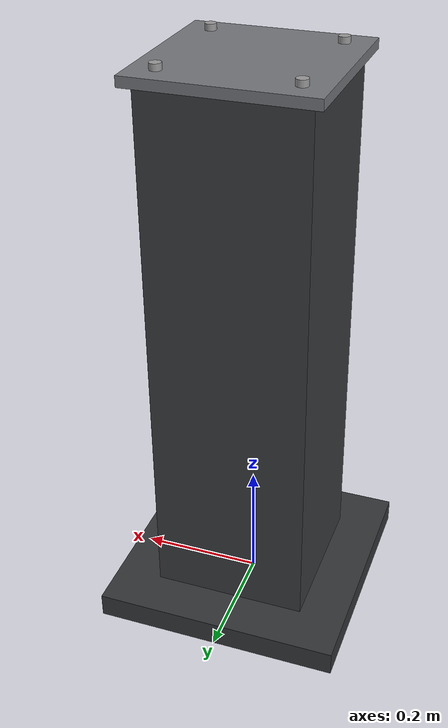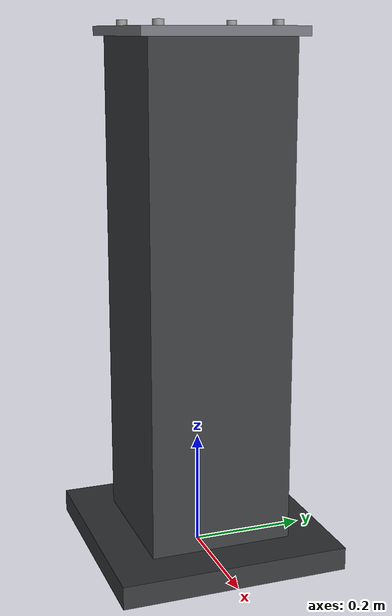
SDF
<?xml version="1.0" ?>
<!--
  ROBOT MOUNTING PEDESTAL
  ────────────────────────
  Heavy steel pedestal to mount UR5e at table height
  Dimensions: 0.25m × 0.25m × 0.90m (brings robot to good working height)
-->
<sdf version="1.6">
  <model name="robot_pedestal">
    <static>true</static>

    <!-- Main column -->
    <link name="column">
      <pose>0 0 0.45 0 0 0</pose>
      <visual name="column_visual">
        <geometry>
          <box><size>0.25 0.25 0.90</size></box>
        </geometry>
        <material>
          <!-- Dark industrial grey, matte finish -->
          <ambient>0.18 0.19 0.20 1.0</ambient>
          <diffuse>0.22 0.23 0.24 1.0</diffuse>
          <specular>0.3 0.3 0.3 1.0</specular>
          <emissive>0.0 0.0 0.0 0.0</emissive>
        </material>
      </visual>
      <collision name="column_col">
        <geometry><box><size>0.25 0.25 0.90</size></box></geometry>
      </collision>
    </link>

    <!-- Top mounting plate (where UR5e base attaches) -->
    <link name="mount_plate">
      <pose>0 0 0.908 0 0 0</pose>
      <visual name="plate_visual">
        <geometry>
          <box><size>0.28 0.28 0.016</size></box>
        </geometry>
        <material>
          <ambient>0.35 0.36 0.37 1.0</ambient>
          <diffuse>0.45 0.46 0.48 1.0</diffuse>
          <specular>0.80 0.80 0.80 1.0</specular>
        </material>
      </visual>
      <collision name="plate_col">
        <geometry><box><size>0.28 0.28 0.016</size></box></geometry>
      </collision>
    </link>

    <!-- Base plate (floor anchor) -->
    <link name="base_plate">
      <pose>0 0 0.020 0 0 0</pose>
      <visual name="base_visual">
        <geometry>
          <box><size>0.40 0.40 0.040</size></box>
        </geometry>
        <material>
          <ambient>0.15 0.16 0.17 1.0</ambient>
          <diffuse>0.20 0.21 0.22 1.0</diffuse>
          <specular>0.25 0.25 0.25 1.0</specular>
        </material>
      </visual>
      <collision name="base_col">
        <geometry><box><size>0.40 0.40 0.040</size></box></geometry>
      </collision>
    </link>

    <!-- Bolt visuals on mounting plate -->
    <link name="bolt_fl">
      <pose>0.10 0.10 0.917 0 0 0</pose>
      <visual name="bolt_fl_v">
        <geometry><cylinder><radius>0.009</radius><length>0.018</length></cylinder></geometry>
        <material>
          <ambient>0.50 0.50 0.50 1.0</ambient>
          <diffuse>0.60 0.60 0.60 1.0</diffuse>
          <specular>0.9 0.9 0.9 1.0</specular>
        </material>
      </visual>
    </link>
    <link name="bolt_fr">
      <pose>-0.10 0.10 0.917 0 0 0</pose>
      <visual name="bolt_fr_v">
        <geometry><cylinder><radius>0.009</radius><length>0.018</length></cylinder></geometry>
        <material>
          <ambient>0.50 0.50 0.50 1.0</ambient>
          <diffuse>0.60 0.60 0.60 1.0</diffuse>
          <specular>0.9 0.9 0.9 1.0</specular>
        </material>
      </visual>
    </link>
    <link name="bolt_bl">
      <pose>0.10 -0.10 0.917 0 0 0</pose>
      <visual name="bolt_bl_v">
        <geometry><cylinder><radius>0.009</radius><length>0.018</length></cylinder></geometry>
        <material>
          <ambient>0.50 0.50 0.50 1.0</ambient>
          <diffuse>0.60 0.60 0.60 1.0</diffuse>
          <specular>0.9 0.9 0.9 1.0</specular>
        </material>
      </visual>
    </link>
    <link name="bolt_br">
      <pose>-0.10 -0.10 0.917 0 0 0</pose>
      <visual name="bolt_br_v">
        <geometry><cylinder><radius>0.009</radius><length>0.018</length></cylinder></geometry>
        <material>
          <ambient>0.50 0.50 0.50 1.0</ambient>
          <diffuse>0.60 0.60 0.60 1.0</diffuse>
          <specular>0.9 0.9 0.9 1.0</specular>
        </material>
      </visual>
    </link>

  </model>
</sdf>
